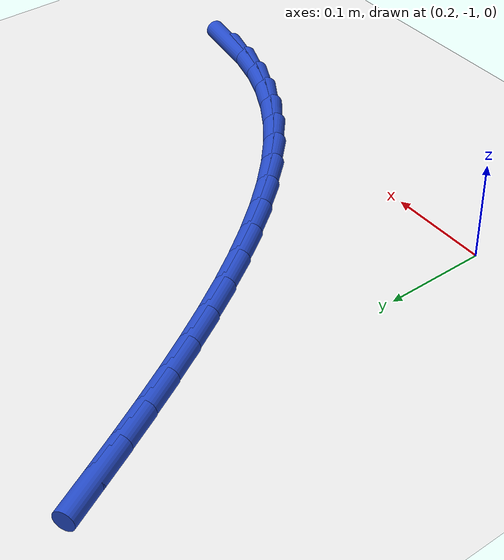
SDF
<sdf version="1.6">
 <world name="default">
  <model name="ground_plane">
   <static>1</static>
   <link name="link">
    <collision name="collision">
     <geometry><plane><normal>0 0 1</normal><size>100 100</size></plane></geometry>
     <surface><friction><ode><mu>100</mu><mu2>50</mu2></ode></friction></surface>
    </collision>
    <visual name="visual">
     <cast_shadows>0</cast_shadows>
     <geometry><plane><normal>0 0 1</normal><size>100 100</size></plane></geometry>
     <material>
      <script><uri>file://media/materials/scripts/gazebo.material</uri><name>Gazebo/WhiteGlow</name></script>
     </material>
    </visual>
   </link>
  </model>
  <model name="line">
   <link name="link_194">
    <pose>0.6203719542877675 -1.0335394515483787 0.01 0 1.57 -0.1578895055508543</pose>
    <collision name="collision">
     <geometry><cylinder><radius>0.01</radius><length>0.08</length></cylinder></geometry>
    </collision>
    <visual name="visual">
     <material>
      <script><name>Gazebo/Blue</name><uri>file://media/materials/scripts/gazebo.material</uri></script>
     </material>
     <geometry><cylinder><radius>0.01</radius><length>0.08</length></cylinder></geometry>
    </visual>
   </link>
   <link name="link_195">
    <pose>0.5873094254148993 -1.028275409740658 0.01 0 1.57 -0.2682762280613228</pose>
    <collision name="collision">
     <geometry><cylinder><radius>0.01</radius><length>0.08</length></cylinder></geometry>
    </collision>
    <visual name="visual">
     <material>
      <script><name>Gazebo/Blue</name><uri>file://media/materials/scripts/gazebo.material</uri></script>
     </material>
     <geometry><cylinder><radius>0.01</radius><length>0.08</length></cylinder></geometry>
    </visual>
   </link>
   <link name="link_196">
    <pose>0.5554884245483278 -1.019527714310727 0.01 0 1.57 -0.3736669349701455</pose>
    <collision name="collision">
     <geometry><cylinder><radius>0.01</radius><length>0.08</length></cylinder></geometry>
    </collision>
    <visual name="visual">
     <material>
      <script><name>Gazebo/Blue</name><uri>file://media/materials/scripts/gazebo.material</uri></script>
     </material>
     <geometry><cylinder><radius>0.01</radius><length>0.08</length></cylinder></geometry>
    </visual>
   </link>
   <link name="link_197">
    <pose>0.5248670875405969 -1.0075214625739044 0.01 0 1.57 -0.47197391282986123</pose>
    <collision name="collision">
     <geometry><cylinder><radius>0.01</radius><length>0.08</length></cylinder></geometry>
    </collision>
    <visual name="visual">
     <material>
      <script><name>Gazebo/Blue</name><uri>file://media/materials/scripts/gazebo.material</uri></script>
     </material>
     <geometry><cylinder><radius>0.01</radius><length>0.08</length></cylinder></geometry>
    </visual>
   </link>
   <link name="link_198">
    <pose>0.49540355024425164 -0.99248175184551 0.01 0 1.57 -0.5619110135110723</pose>
    <collision name="collision">
     <geometry><cylinder><radius>0.01</radius><length>0.08</length></cylinder></geometry>
    </collision>
    <visual name="visual">
     <material>
      <script><name>Gazebo/Blue</name><uri>file://media/materials/scripts/gazebo.material</uri></script>
     </material>
     <geometry><cylinder><radius>0.01</radius><length>0.08</length></cylinder></geometry>
    </visual>
   </link>
   <link name="link_199">
    <pose>0.46705594851183585 -0.9746336794408625 0.01 0 1.57 -0.6429421269281254</pose>
    <collision name="collision">
     <geometry><cylinder><radius>0.01</radius><length>0.08</length></cylinder></geometry>
    </collision>
    <visual name="visual">
     <material>
      <script><name>Gazebo/Blue</name><uri>file://media/materials/scripts/gazebo.material</uri></script>
     </material>
     <geometry><cylinder><radius>0.01</radius><length>0.08</length></cylinder></geometry>
    </visual>
   </link>
   <link name="link_200">
    <pose>0.4397824181958935 -0.9542023426752809 0.01 0 1.57 -0.7151131283691337</pose>
    <collision name="collision">
     <geometry><cylinder><radius>0.01</radius><length>0.08</length></cylinder></geometry>
    </collision>
    <visual name="visual">
     <material>
      <script><name>Gazebo/Blue</name><uri>file://media/materials/scripts/gazebo.material</uri></script>
     </material>
     <geometry><cylinder><radius>0.01</radius><length>0.08</length></cylinder></geometry>
    </visual>
   </link>
   <link name="link_201">
    <pose>0.41354109514896814 -0.9314128388640835 0.01 0 1.57 -0.7788528487566284</pose>
    <collision name="collision">
     <geometry><cylinder><radius>0.01</radius><length>0.08</length></cylinder></geometry>
    </collision>
    <visual name="visual">
     <material>
      <script><name>Gazebo/Blue</name><uri>file://media/materials/scripts/gazebo.material</uri></script>
     </material>
     <geometry><cylinder><radius>0.01</radius><length>0.08</length></cylinder></geometry>
    </visual>
   </link>
   <link name="link_202">
    <pose>0.3882901152236055 -0.9064902653225912 0.01 0 1.57 -0.8347984700709605</pose>
    <collision name="collision">
     <geometry><cylinder><radius>0.01</radius><length>0.08</length></cylinder></geometry>
    </collision>
    <visual name="visual">
     <material>
      <script><name>Gazebo/Blue</name><uri>file://media/materials/scripts/gazebo.material</uri></script>
     </material>
     <geometry><cylinder><radius>0.01</radius><length>0.08</length></cylinder></geometry>
    </visual>
   </link>
   <link name="link_203">
    <pose>0.36398761427234894 -0.8796597193661221 0.01 0 1.57 -0.8836666965921057</pose>
    <collision name="collision">
     <geometry><cylinder><radius>0.01</radius><length>0.08</length></cylinder></geometry>
    </collision>
    <visual name="visual">
     <material>
      <script><name>Gazebo/Blue</name><uri>file://media/materials/scripts/gazebo.material</uri></script>
     </material>
     <geometry><cylinder><radius>0.01</radius><length>0.08</length></cylinder></geometry>
    </visual>
   </link>
   <link name="link_204">
    <pose>0.34059172814774247 -0.8511462983099951 0.01 0 1.57 -0.926170046278605</pose>
    <collision name="collision">
     <geometry><cylinder><radius>0.01</radius><length>0.08</length></cylinder></geometry>
    </collision>
    <visual name="visual">
     <material>
      <script><name>Gazebo/Blue</name><uri>file://media/materials/scripts/gazebo.material</uri></script>
     </material>
     <geometry><cylinder><radius>0.01</radius><length>0.08</length></cylinder></geometry>
    </visual>
   </link>
   <link name="link_205">
    <pose>0.3180605927023305 -0.8211750994695294 0.01 0 1.57 -0.9629683630640056</pose>
    <collision name="collision">
     <geometry><cylinder><radius>0.01</radius><length>0.08</length></cylinder></geometry>
    </collision>
    <visual name="visual">
     <material>
      <script><name>Gazebo/Blue</name><uri>file://media/materials/scripts/gazebo.material</uri></script>
     </material>
     <geometry><cylinder><radius>0.01</radius><length>0.08</length></cylinder></geometry>
    </visual>
   </link>
   <link name="link_206">
    <pose>0.2963523437886566 -0.7899712201600435 0.01 0 1.57 -0.994644270211863</pose>
    <collision name="collision">
     <geometry><cylinder><radius>0.01</radius><length>0.08</length></cylinder></geometry>
    </collision>
    <visual name="visual">
     <material>
      <script><name>Gazebo/Blue</name><uri>file://media/materials/scripts/gazebo.material</uri></script>
     </material>
     <geometry><cylinder><radius>0.01</radius><length>0.08</length></cylinder></geometry>
    </visual>
   </link>
   <link name="link_207">
    <pose>0.27542511725926605 -0.757759757696858 0.01 0 1.57 -1.0216932231800397</pose>
    <collision name="collision">
     <geometry><cylinder><radius>0.01</radius><length>0.08</length></cylinder></geometry>
    </collision>
    <visual name="visual">
     <material>
      <script><name>Gazebo/Blue</name><uri>file://media/materials/scripts/gazebo.material</uri></script>
     </material>
     <geometry><cylinder><radius>0.01</radius><length>0.08</length></cylinder></geometry>
    </visual>
   </link>
   <link name="link_208">
    <pose>0.25523704896670246 -0.7247658093952911 0.01 0 1.57 -1.0445214584764164</pose>
    <collision name="collision">
     <geometry><cylinder><radius>0.01</radius><length>0.08</length></cylinder></geometry>
    </collision>
    <visual name="visual">
     <material>
      <script><name>Gazebo/Blue</name><uri>file://media/materials/scripts/gazebo.material</uri></script>
     </material>
     <geometry><cylinder><radius>0.01</radius><length>0.08</length></cylinder></geometry>
    </visual>
   </link>
   <link name="link_209">
    <pose>0.23574627476351004 -0.6912144725706619 0.01 0 1.57 -1.0634473818332748</pose>
    <collision name="collision">
     <geometry><cylinder><radius>0.01</radius><length>0.08</length></cylinder></geometry>
    </collision>
    <visual name="visual">
     <material>
      <script><name>Gazebo/Blue</name><uri>file://media/materials/scripts/gazebo.material</uri></script>
     </material>
     <geometry><cylinder><radius>0.01</radius><length>0.08</length></cylinder></geometry>
    </visual>
   </link>
   <link name="link_210">
    <pose>0.21691093050223248 -0.6573308445382887 0.01 0 1.57 -1.0787035194403993</pose>
    <collision name="collision">
     <geometry><cylinder><radius>0.01</radius><length>0.08</length></cylinder></geometry>
    </collision>
    <visual name="visual">
     <material>
      <script><name>Gazebo/Blue</name><uri>file://media/materials/scripts/gazebo.material</uri></script>
     </material>
     <geometry><cylinder><radius>0.01</radius><length>0.08</length></cylinder></geometry>
    </visual>
   </link>
   <link name="link_211">
    <pose>0.19868915203541493 -0.6233400226134923 0.01 0 1.57 -1.0904371187673148</pose>
    <collision name="collision">
     <geometry><cylinder><radius>0.01</radius><length>0.08</length></cylinder></geometry>
    </collision>
    <visual name="visual">
     <material>
      <script><name>Gazebo/Blue</name><uri>file://media/materials/scripts/gazebo.material</uri></script>
     </material>
     <geometry><cylinder><radius>0.01</radius><length>0.08</length></cylinder></geometry>
    </visual>
   </link>
   <link name="link_212">
    <pose>0.18103907521560103 -0.5894671041115908 0.01 0 1.57 -1.0987079554989032</pose>
    <collision name="collision">
     <geometry><cylinder><radius>0.01</radius><length>0.08</length></cylinder></geometry>
    </collision>
    <visual name="visual">
     <material>
      <script><name>Gazebo/Blue</name><uri>file://media/materials/scripts/gazebo.material</uri></script>
     </material>
     <geometry><cylinder><radius>0.01</radius><length>0.08</length></cylinder></geometry>
    </visual>
   </link>
  </model>
 </world>
</sdf>
